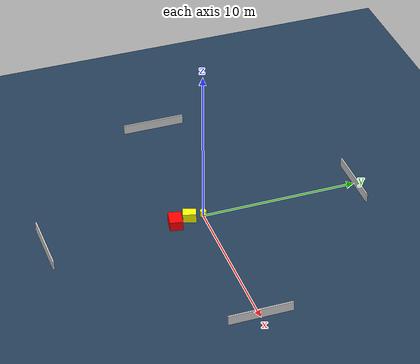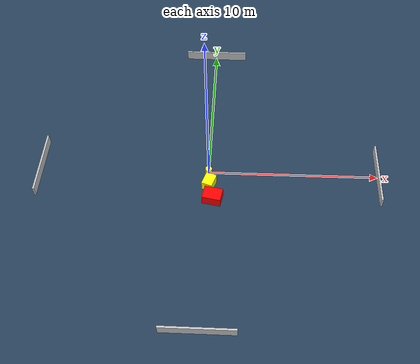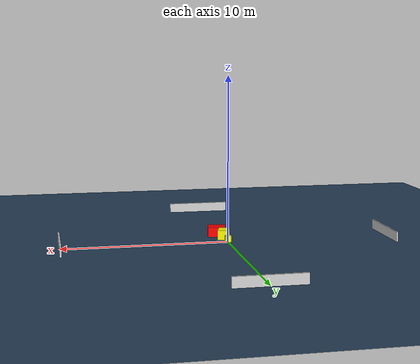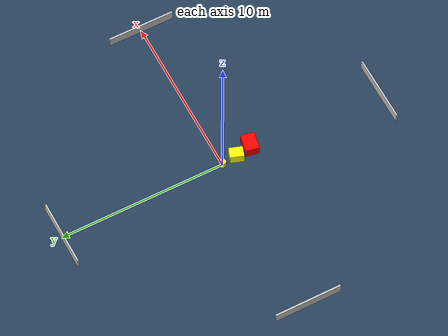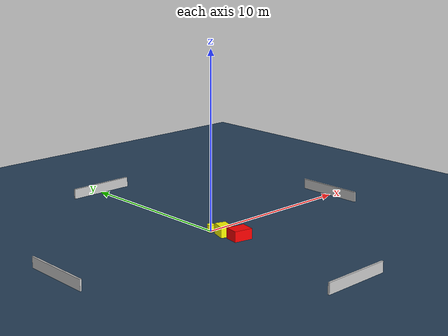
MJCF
<?xml version="1.0" ?>
<mujoco model="generated_environment">
  <option timestep="0.01" integrator="RK4" cone="elliptic"/>
  <default>
    <geom density="1"/>
  </default>
  <asset>
    <texture builtin="gradient" height="3072" name="skybox" rgb1="0.3 0.5 0.7" rgb2="0 0 0" type="skybox" width="512"/>
    <texture builtin="checker" height="300" name="groundplane" rgb1="0.2 0.3 0.4" rgb2="0.1 0.2 0.3" type="2d" width="300"/>
    <material name="groundplane" reflectance="0.2" texrepeat="5 5" texture="groundplane"/>
  </asset>
  <worldbody>
    <light dir="0 0 -1" directional="true" pos="0 0 1.5"/>
    <geom condim="3" friction="0.5 0.005 0.001" material="groundplane" name="floor" pos="0 0 0" size="0 0 0.05" type="plane"/>
    <body name="walls">
      <geom name="wall_1" condim="4" pos="-10.0 0.0 0.3" rgba="0.800000011920929 0.800000011920929 0.800000011920929 1.0" size="0.05 2.0 0.3" type="box"/>
      <geom name="wall_2" condim="4" pos="10.0 0.0 0.3" rgba="0.800000011920929 0.800000011920929 0.800000011920929 1.0" size="0.05 2.0 0.3" type="box"/>
      <geom name="wall_3" condim="4" pos="0.0 -10.0 0.3" rgba="0.800000011920929 0.800000011920929 0.800000011920929 1.0" size="2.0 0.05 0.3" type="box"/>
      <geom name="wall_4" condim="4" pos="0.0 10.0 0.3" rgba="0.800000011920929 0.800000011920929 0.800000011920929 1.0" size="2.0 0.05 0.3" type="box"/>
    </body>
    <body name="robot">
      <joint name="joint_x" type="slide" pos="0 0 0" axis="1 0 0"/>
      <joint name="joint_y" type="slide" pos="0 0 0" axis="0 1 0"/>
      <geom name="robot" type="cylinder" pos="0.0 0.0 0.2" size="0.2 0.2 0.0" mass="5.0" friction="1.0 0.005 0.0001" condim="4" rgba="1.0 1.0 0.0 1.0"/>
    </body>
    <body name="obstacle_1_movable">
      <geom name="obstacle_1_movable" condim="4" pos="0.07663989249834119 -0.9052674925350498 0.3" euler="0 0 161.69594843686" friction="0.0 0.005 0.001" rgba="1.0 1.0 0.0 1.0" size="0.32093457504469053 0.4106467573106602 0.3" type="box" mass="0.1"/>
      <joint type="free"/>
    </body>
    <body name="obstacle_2_static">
      <geom name="obstacle_2_static" condim="4" pos="0.3205516066587312 -1.8941405486115988 0.3" euler="0 0 79.3909050940742" friction="0.0 0.005 0.001" rgba="1.0 0.0 0.0 1.0" size="0.4076650719232294 0.540738477732331 0.3" type="box"/>
    </body>
  </worldbody>
  <actuator>
    <motor name="actuator_x" joint="joint_x" gear="1" ctrlrange="-1 1"/>
    <motor name="actuator_y" joint="joint_y" gear="1" ctrlrange="-1 1"/>
  </actuator>
</mujoco>
